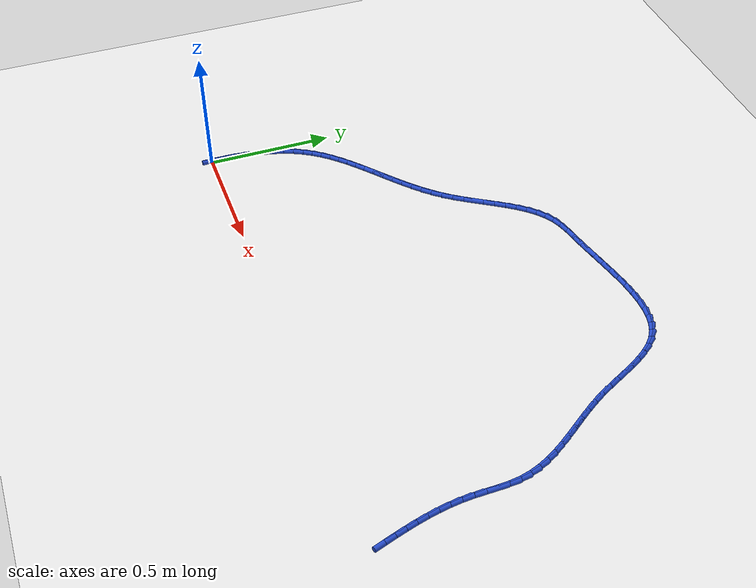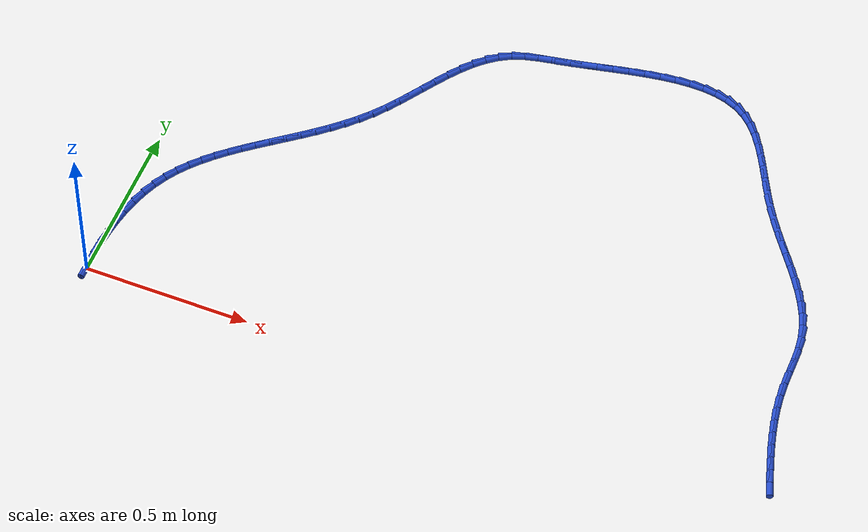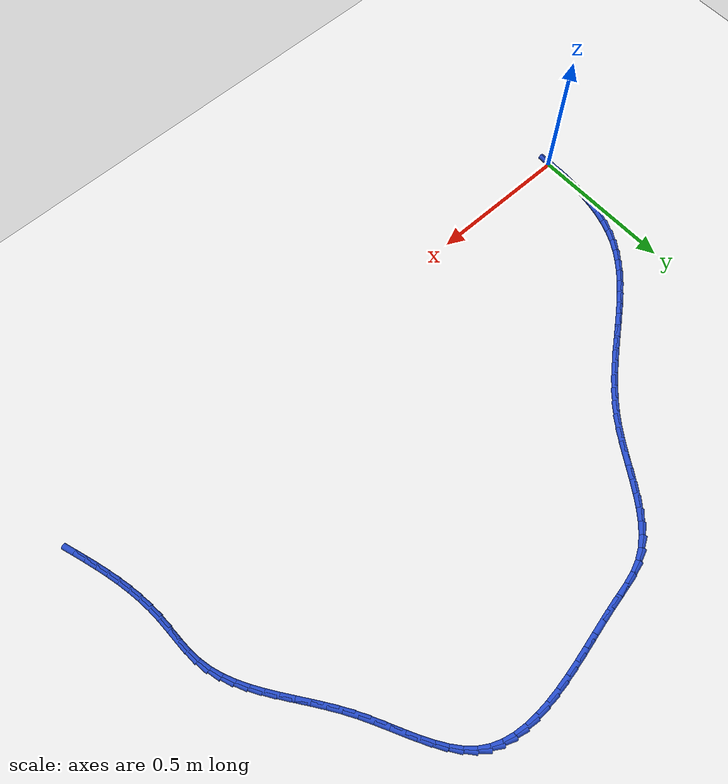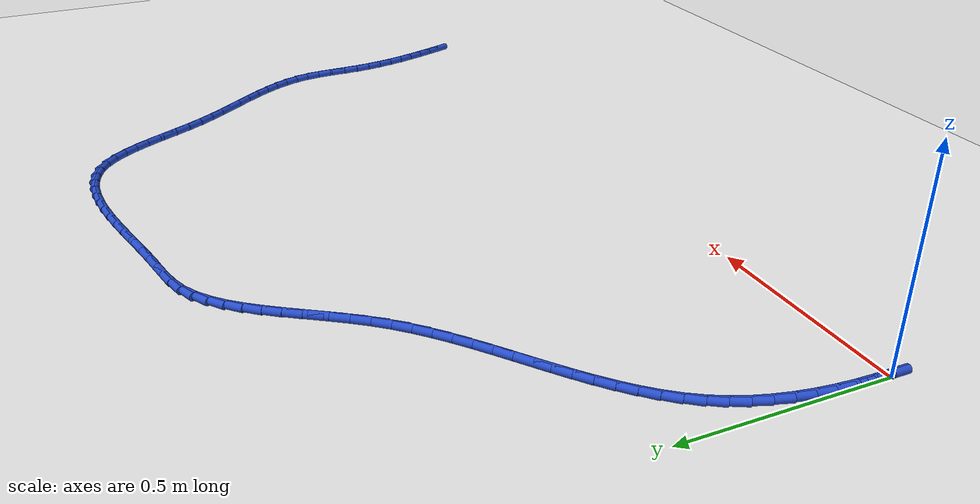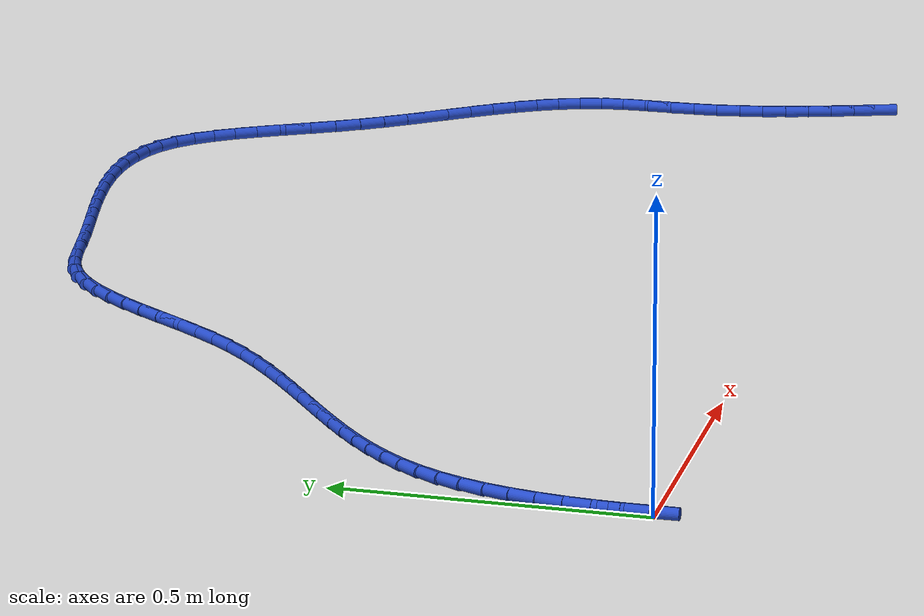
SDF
<sdf version="1.6">
 <world name="default">
  <model name="ground_plane">
   <static>1</static>
   <link name="link">
    <collision name="collision">
     <geometry><plane><normal>0 0 1</normal><size>100 100</size></plane></geometry>
     <surface><friction><ode><mu>100</mu><mu2>50</mu2></ode></friction></surface>
    </collision>
    <visual name="visual">
     <cast_shadows>0</cast_shadows>
     <geometry><plane><normal>0 0 1</normal><size>100 100</size></plane></geometry>
     <material>
      <script><uri>file://media/materials/scripts/gazebo.material</uri><name>Gazebo/WhiteGlow</name></script>
     </material>
    </visual>
   </link>
  </model>
  <model name="line">
   <link name="link_0">
    <pose>1.214306433183765e-17 -6.938893903907228e-17 0.01 0 1.57 -1.5685302213631074</pose>
    <collision name="collision">
     <geometry><cylinder><radius>0.01</radius><length>0.08</length></cylinder></geometry>
    </collision>
    <visual name="visual">
     <material>
      <script><name>Gazebo/Blue</name><uri>file://media/materials/scripts/gazebo.material</uri></script>
     </material>
     <geometry><cylinder><radius>0.01</radius><length>0.08</length></cylinder></geometry>
    </visual>
   </link>
   <link name="link_1">
    <pose>-9.99671896477195e-05 0.044114019200969606 0.01 0 1.57 1.5363660218653532</pose>
    <collision name="collision">
     <geometry><cylinder><radius>0.01</radius><length>0.08</length></cylinder></geometry>
    </collision>
    <visual name="visual">
     <material>
      <script><name>Gazebo/Blue</name><uri>file://media/materials/scripts/gazebo.material</uri></script>
     </material>
     <geometry><cylinder><radius>0.01</radius><length>0.08</length></cylinder></geometry>
    </visual>
   </link>
   <link name="link_2">
    <pose>0.0014224744497002872 0.08831461527995998 0.01 0 1.57 1.4947771484701307</pose>
    <collision name="collision">
     <geometry><cylinder><radius>0.01</radius><length>0.08</length></cylinder></geometry>
    </collision>
    <visual name="visual">
     <material>
      <script><name>Gazebo/Blue</name><uri>file://media/materials/scripts/gazebo.material</uri></script>
     </material>
     <geometry><cylinder><radius>0.01</radius><length>0.08</length></cylinder></geometry>
    </visual>
   </link>
   <link name="link_3">
    <pose>0.004772150245150177 0.13229326493256127 0.01 0 1.57 1.447558426292112</pose>
    <collision name="collision">
     <geometry><cylinder><radius>0.01</radius><length>0.08</length></cylinder></geometry>
    </collision>
    <visual name="visual">
     <material>
      <script><name>Gazebo/Blue</name><uri>file://media/materials/scripts/gazebo.material</uri></script>
     </material>
     <geometry><cylinder><radius>0.01</radius><length>0.08</length></cylinder></geometry>
    </visual>
   </link>
   <link name="link_4">
    <pose>0.010153885523808115 0.17574144485436366 0.01 0 1.57 1.393863754703987</pose>
    <collision name="collision">
     <geometry><cylinder><radius>0.01</radius><length>0.08</length></cylinder></geometry>
    </collision>
    <visual name="visual">
     <material>
      <script><name>Gazebo/Blue</name><uri>file://media/materials/scripts/gazebo.material</uri></script>
     </material>
     <geometry><cylinder><radius>0.01</radius><length>0.08</length></cylinder></geometry>
    </visual>
   </link>
   <link name="link_5">
    <pose>0.01777250561278025 0.2183506317409575 0.01 0 1.57 1.3327550224882376</pose>
    <collision name="collision">
     <geometry><cylinder><radius>0.01</radius><length>0.08</length></cylinder></geometry>
    </collision>
    <visual name="visual">
     <material>
      <script><name>Gazebo/Blue</name><uri>file://media/materials/scripts/gazebo.material</uri></script>
     </material>
     <geometry><cylinder><radius>0.01</radius><length>0.08</length></cylinder></geometry>
    </visual>
   </link>
   <link name="link_6">
    <pose>0.02783283583917274 0.25981230228793284 0.01 0 1.57 1.26324750327836</pose>
    <collision name="collision">
     <geometry><cylinder><radius>0.01</radius><length>0.08</length></cylinder></geometry>
    </collision>
    <visual name="visual">
     <material>
      <script><name>Gazebo/Blue</name><uri>file://media/materials/scripts/gazebo.material</uri></script>
     </material>
     <geometry><cylinder><radius>0.01</radius><length>0.08</length></cylinder></geometry>
    </visual>
   </link>
   <link name="link_7">
    <pose>0.04053970153009172 0.29981793319087996 0.01 0 1.57 1.1844021716031738</pose>
    <collision name="collision">
     <geometry><cylinder><radius>0.01</radius><length>0.08</length></cylinder></geometry>
    </collision>
    <visual name="visual">
     <material>
      <script><name>Gazebo/Blue</name><uri>file://media/materials/scripts/gazebo.material</uri></script>
     </material>
     <geometry><cylinder><radius>0.01</radius><length>0.08</length></cylinder></geometry>
    </visual>
   </link>
   <link name="link_8">
    <pose>0.05609792801264335 0.33805900114538906 0.01 0 1.57 1.095634461560095</pose>
    <collision name="collision">
     <geometry><cylinder><radius>0.01</radius><length>0.08</length></cylinder></geometry>
    </collision>
    <visual name="visual">
     <material>
      <script><name>Gazebo/Blue</name><uri>file://media/materials/scripts/gazebo.material</uri></script>
     </material>
     <geometry><cylinder><radius>0.01</radius><length>0.08</length></cylinder></geometry>
    </visual>
   </link>
   <link name="link_9">
    <pose>0.07470799001230478 0.37423179226611597 0.01 0 1.57 1.004116747851904</pose>
    <collision name="collision">
     <geometry><cylinder><radius>0.01</radius><length>0.08</length></cylinder></geometry>
    </collision>
    <visual name="visual">
     <material>
      <script><name>Gazebo/Blue</name><uri>file://media/materials/scripts/gazebo.material</uri></script>
     </material>
     <geometry><cylinder><radius>0.01</radius><length>0.08</length></cylinder></geometry>
    </visual>
   </link>
   <link name="link_10">
    <pose>0.09636187944067819 0.408263062222364 0.01 0 1.57 0.9216298065416448</pose>
    <collision name="collision">
     <geometry><cylinder><radius>0.01</radius><length>0.08</length></cylinder></geometry>
    </collision>
    <visual name="visual">
     <material>
      <script><name>Gazebo/Blue</name><uri>file://media/materials/scripts/gazebo.material</uri></script>
     </material>
     <geometry><cylinder><radius>0.01</radius><length>0.08</length></cylinder></geometry>
    </visual>
   </link>
   <link name="link_11">
    <pose>0.12075550225557333 0.4404068780653176 0.01 0 1.57 0.850331340027047</pose>
    <collision name="collision">
     <geometry><cylinder><radius>0.01</radius><length>0.08</length></cylinder></geometry>
    </collision>
    <visual name="visual">
     <material>
      <script><name>Gazebo/Blue</name><uri>file://media/materials/scripts/gazebo.material</uri></script>
     </material>
     <geometry><cylinder><radius>0.01</radius><length>0.08</length></cylinder></geometry>
    </visual>
   </link>
   <link name="link_12">
    <pose>0.14756221451187218 0.47094223487734294 0.01 0 1.57 0.790780903514077</pose>
    <collision name="collision">
     <geometry><cylinder><radius>0.01</radius><length>0.08</length></cylinder></geometry>
    </collision>
    <visual name="visual">
     <material>
      <script><name>Gazebo/Blue</name><uri>file://media/materials/scripts/gazebo.material</uri></script>
     </material>
     <geometry><cylinder><radius>0.01</radius><length>0.08</length></cylinder></geometry>
    </visual>
   </link>
   <link name="link_13">
    <pose>0.17645537226445665 0.5001481277408066 0.01 0 1.57 0.7429546331523817</pose>
    <collision name="collision">
     <geometry><cylinder><radius>0.01</radius><length>0.08</length></cylinder></geometry>
    </collision>
    <visual name="visual">
     <material>
      <script><name>Gazebo/Blue</name><uri>file://media/materials/scripts/gazebo.material</uri></script>
     </material>
     <geometry><cylinder><radius>0.01</radius><length>0.08</length></cylinder></geometry>
    </visual>
   </link>
   <link name="link_14">
    <pose>0.20710833156820843 0.5283035517380745 0.01 0 1.57 0.7064945292356812</pose>
    <collision name="collision">
     <geometry><cylinder><radius>0.01</radius><length>0.08</length></cylinder></geometry>
    </collision>
    <visual name="visual">
     <material>
      <script><name>Gazebo/Blue</name><uri>file://media/materials/scripts/gazebo.material</uri></script>
     </material>
     <geometry><cylinder><radius>0.01</radius><length>0.08</length></cylinder></geometry>
    </visual>
   </link>
   <link name="link_15">
    <pose>0.2391944484780096 0.5556875019515133 0.01 0 1.57 0.680907797121899</pose>
    <collision name="collision">
     <geometry><cylinder><radius>0.01</radius><length>0.08</length></cylinder></geometry>
    </collision>
    <visual name="visual">
     <material>
      <script><name>Gazebo/Blue</name><uri>file://media/materials/scripts/gazebo.material</uri></script>
     </material>
     <geometry><cylinder><radius>0.01</radius><length>0.08</length></cylinder></geometry>
    </visual>
   </link>
   <link name="link_16">
    <pose>0.27238707904874204 0.582578973463489 0.01 0 1.57 0.6657018080436211</pose>
    <collision name="collision">
     <geometry><cylinder><radius>0.01</radius><length>0.08</length></cylinder></geometry>
    </collision>
    <visual name="visual">
     <material>
      <script><name>Gazebo/Blue</name><uri>file://media/materials/scripts/gazebo.material</uri></script>
     </material>
     <geometry><cylinder><radius>0.01</radius><length>0.08</length></cylinder></geometry>
    </visual>
   </link>
   <link name="link_17">
    <pose>0.3063595793352878 0.6092569613563683 0.01 0 1.57 0.6604625506550345</pose>
    <collision name="collision">
     <geometry><cylinder><radius>0.01</radius><length>0.08</length></cylinder></geometry>
    </collision>
    <visual name="visual">
     <material>
      <script><name>Gazebo/Blue</name><uri>file://media/materials/scripts/gazebo.material</uri></script>
     </material>
     <geometry><cylinder><radius>0.01</radius><length>0.08</length></cylinder></geometry>
    </visual>
   </link>
   <link name="link_18">
    <pose>0.34078530539252844 0.6360004607125169 0.01 0 1.57 0.6648904304787626</pose>
    <collision name="collision">
     <geometry><cylinder><radius>0.01</radius><length>0.08</length></cylinder></geometry>
    </collision>
    <visual name="visual">
     <material>
      <script><name>Gazebo/Blue</name><uri>file://media/materials/scripts/gazebo.material</uri></script>
     </material>
     <geometry><cylinder><radius>0.01</radius><length>0.08</length></cylinder></geometry>
    </visual>
   </link>
   <link name="link_19">
    <pose>0.3753376132753459 0.6630884666143015 0.01 0 1.57 0.6788050567709941</pose>
    <collision name="collision">
     <geometry><cylinder><radius>0.01</radius><length>0.08</length></cylinder></geometry>
    </collision>
    <visual name="visual">
     <material>
      <script><name>Gazebo/Blue</name><uri>file://media/materials/scripts/gazebo.material</uri></script>
     </material>
     <geometry><cylinder><radius>0.01</radius><length>0.08</length></cylinder></geometry>
    </visual>
   </link>
   <link name="link_20">
    <pose>0.40968985903862243 0.6907999741440884 0.01 0 1.57 0.7021258733396276</pose>
    <collision name="collision">
     <geometry><cylinder><radius>0.01</radius><length>0.08</length></cylinder></geometry>
    </collision>
    <visual name="visual">
     <material>
      <script><name>Gazebo/Blue</name><uri>file://media/materials/scripts/gazebo.material</uri></script>
     </material>
     <geometry><cylinder><radius>0.01</radius><length>0.08</length></cylinder></geometry>
    </visual>
   </link>
   <link name="link_21">
    <pose>0.4435153987372397 0.7194139783842439 0.01 0 1.57 0.7348309724507885</pose>
    <collision name="collision">
     <geometry><cylinder><radius>0.01</radius><length>0.08</length></cylinder></geometry>
    </collision>
    <visual name="visual">
     <material>
      <script><name>Gazebo/Blue</name><uri>file://media/materials/scripts/gazebo.material</uri></script>
     </material>
     <geometry><cylinder><radius>0.01</radius><length>0.08</length></cylinder></geometry>
    </visual>
   </link>
   <link name="link_22">
    <pose>0.4764875884260793 0.7492094744171338 0.01 0 1.57 0.7768935577189008</pose>
    <collision name="collision">
     <geometry><cylinder><radius>0.01</radius><length>0.08</length></cylinder></geometry>
    </collision>
    <visual name="visual">
     <material>
      <script><name>Gazebo/Blue</name><uri>file://media/materials/scripts/gazebo.material</uri></script>
     </material>
     <geometry><cylinder><radius>0.01</radius><length>0.08</length></cylinder></geometry>
    </visual>
   </link>
   <link name="link_23">
    <pose>0.5082797841600237 0.7804654573251251 0.01 0 1.57 0.8281953911116935</pose>
    <collision name="collision">
     <geometry><cylinder><radius>0.01</radius><length>0.08</length></cylinder></geometry>
    </collision>
    <visual name="visual">
     <material>
      <script><name>Gazebo/Blue</name><uri>file://media/materials/scripts/gazebo.material</uri></script>
     </material>
     <geometry><cylinder><radius>0.01</radius><length>0.08</length></cylinder></geometry>
    </visual>
   </link>
   <link name="link_24">
    <pose>0.5385653419939547 0.813460922190584 0.01 0 1.57 0.8878043707804502</pose>
    <collision name="collision">
     <geometry><cylinder><radius>0.01</radius><length>0.08</length></cylinder></geometry>
    </collision>
    <visual name="visual">
     <material>
      <script><name>Gazebo/Blue</name><uri>file://media/materials/scripts/gazebo.material</uri></script>
     </material>
     <geometry><cylinder><radius>0.01</radius><length>0.08</length></cylinder></geometry>
    </visual>
   </link>
   <link name="link_25">
    <pose>0.5670356861177517 0.8484530291755793 0.01 0 1.57 0.9416291684233294</pose>
    <collision name="collision">
     <geometry><cylinder><radius>0.01</radius><length>0.08</length></cylinder></geometry>
    </collision>
    <visual name="visual">
     <material>
      <script><name>Gazebo/Blue</name><uri>file://media/materials/scripts/gazebo.material</uri></script>
     </material>
     <geometry><cylinder><radius>0.01</radius><length>0.08</length></cylinder></geometry>
    </visual>
   </link>
   <link name="link_26">
    <pose>0.5937879195670831 0.8852086850062272 0.01 0 1.57 0.9767766220533224</pose>
    <collision name="collision">
     <geometry><cylinder><radius>0.01</radius><length>0.08</length></cylinder></geometry>
    </collision>
    <visual name="visual">
     <material>
      <script><name>Gazebo/Blue</name><uri>file://media/materials/scripts/gazebo.material</uri></script>
     </material>
     <geometry><cylinder><radius>0.01</radius><length>0.08</length></cylinder></geometry>
    </visual>
   </link>
   <link name="link_27">
    <pose>0.6193194056220332 0.923011091226237 0.01 0 1.57 0.9934552692911446</pose>
    <collision name="collision">
     <geometry><cylinder><radius>0.01</radius><length>0.08</length></cylinder></geometry>
    </collision>
    <visual name="visual">
     <material>
      <script><name>Gazebo/Blue</name><uri>file://media/materials/scripts/gazebo.material</uri></script>
     </material>
     <geometry><cylinder><radius>0.01</radius><length>0.08</length></cylinder></geometry>
    </visual>
   </link>
   <link name="link_28">
    <pose>0.6441444919159811 0.9611229241839668 0.01 0 1.57 0.9918421998247919</pose>
    <collision name="collision">
     <geometry><cylinder><radius>0.01</radius><length>0.08</length></cylinder></geometry>
    </collision>
    <visual name="visual">
     <material>
      <script><name>Gazebo/Blue</name><uri>file://media/materials/scripts/gazebo.material</uri></script>
     </material>
     <geometry><cylinder><radius>0.01</radius><length>0.08</length></cylinder></geometry>
    </visual>
   </link>
   <link name="link_29">
    <pose>0.668777526082305 0.9988068602277739 0.01 0 1.57 0.9713275255370154</pose>
    <collision name="collision">
     <geometry><cylinder><radius>0.01</radius><length>0.08</length></cylinder></geometry>
    </collision>
    <visual name="visual">
     <material>
      <script><name>Gazebo/Blue</name><uri>file://media/materials/scripts/gazebo.material</uri></script>
     </material>
     <geometry><cylinder><radius>0.01</radius><length>0.08</length></cylinder></geometry>
    </visual>
   </link>
   <link name="link_30">
    <pose>0.6937328557543836 1.035325575706015 0.01 0 1.57 0.9304485648295</pose>
    <collision name="collision">
     <geometry><cylinder><radius>0.01</radius><length>0.08</length></cylinder></geometry>
    </collision>
    <visual name="visual">
     <material>
      <script><name>Gazebo/Blue</name><uri>file://media/materials/scripts/gazebo.material</uri></script>
     </material>
     <geometry><cylinder><radius>0.01</radius><length>0.08</length></cylinder></geometry>
    </visual>
   </link>
   <link name="link_31">
    <pose>0.7195248285655957 1.0699417469670487 0.01 0 1.57 0.866972485142294</pose>
    <collision name="collision">
     <geometry><cylinder><radius>0.01</radius><length>0.08</length></cylinder></geometry>
    </collision>
    <visual name="visual">
     <material>
      <script><name>Gazebo/Blue</name><uri>file://media/materials/scripts/gazebo.material</uri></script>
     </material>
     <geometry><cylinder><radius>0.01</radius><length>0.08</length></cylinder></geometry>
    </visual>
   </link>
   <link name="link_32">
    <pose>0.7466677921493202 1.1019180503592323 0.01 0 1.57 0.7782952020079401</pose>
    <collision name="collision">
     <geometry><cylinder><radius>0.01</radius><length>0.08</length></cylinder></geometry>
    </collision>
    <visual name="visual">
     <material>
      <script><name>Gazebo/Blue</name><uri>file://media/materials/scripts/gazebo.material</uri></script>
     </material>
     <geometry><cylinder><radius>0.01</radius><length>0.08</length></cylinder></geometry>
    </visual>
   </link>
   <link name="link_33">
    <pose>0.7756760941389356 1.1305171622309234 0.01 0 1.57 0.662465236075716</pose>
    <collision name="collision">
     <geometry><cylinder><radius>0.01</radius><length>0.08</length></cylinder></geometry>
    </collision>
    <visual name="visual">
     <material>
      <script><name>Gazebo/Blue</name><uri>file://media/materials/scripts/gazebo.material</uri></script>
     </material>
     <geometry><cylinder><radius>0.01</radius><length>0.08</length></cylinder></geometry>
    </visual>
   </link>
   <link name="link_34">
    <pose>0.8070640821678203 1.1550017589304789 0.01 0 1.57 0.5200918389951178</pose>
    <collision name="collision">
     <geometry><cylinder><radius>0.01</radius><length>0.08</length></cylinder></geometry>
    </collision>
    <visual name="visual">
     <material>
      <script><name>Gazebo/Blue</name><uri>file://media/materials/scripts/gazebo.material</uri></script>
     </material>
     <geometry><cylinder><radius>0.01</radius><length>0.08</length></cylinder></geometry>
    </visual>
   </link>
   <link name="link_35">
    <pose>0.8413461038693528 1.1746345168062564 0.01 0 1.57 0.36163210237958193</pose>
    <collision name="collision">
     <geometry><cylinder><radius>0.01</radius><length>0.08</length></cylinder></geometry>
    </collision>
    <visual name="visual">
     <material>
      <script><name>Gazebo/Blue</name><uri>file://media/materials/scripts/gazebo.material</uri></script>
     </material>
     <geometry><cylinder><radius>0.01</radius><length>0.08</length></cylinder></geometry>
    </visual>
   </link>
   <link name="link_36">
    <pose>0.8789596154095368 1.1888624796099996 0.01 0 1.57 0.242095698993893</pose>
    <collision name="collision">
     <geometry><cylinder><radius>0.01</radius><length>0.08</length></cylinder></geometry>
    </collision>
    <visual name="visual">
     <material>
      <script><name>Gazebo/Blue</name><uri>file://media/materials/scripts/gazebo.material</uri></script>
     </material>
     <geometry><cylinder><radius>0.01</radius><length>0.08</length></cylinder></geometry>
    </visual>
   </link>
   <link name="link_37">
    <pose>0.9196052284112275 1.1988994686014702 0.01 0 1.57 0.18504675685482516</pose>
    <collision name="collision">
     <geometry><cylinder><radius>0.01</radius><length>0.08</length></cylinder></geometry>
    </collision>
    <visual name="visual">
     <material>
      <script><name>Gazebo/Blue</name><uri>file://media/materials/scripts/gazebo.material</uri></script>
     </material>
     <geometry><cylinder><radius>0.01</radius><length>0.08</length></cylinder></geometry>
    </visual>
   </link>
   <link name="link_38">
    <pose>0.9625734591464802 1.2069426159011527 0.01 0 1.57 0.18227392945360685</pose>
    <collision name="collision">
     <geometry><cylinder><radius>0.01</radius><length>0.08</length></cylinder></geometry>
    </collision>
    <visual name="visual">
     <material>
      <script><name>Gazebo/Blue</name><uri>file://media/materials/scripts/gazebo.material</uri></script>
     </material>
     <geometry><cylinder><radius>0.01</radius><length>0.08</length></cylinder></geometry>
    </visual>
   </link>
   <link name="link_39">
    <pose>1.00715563410935 1.2151599904175578 0.01 0 1.57 0.20176720868793951</pose>
    <collision name="collision">
     <geometry><cylinder><radius>0.01</radius><length>0.08</length></cylinder></geometry>
    </collision>
    <visual name="visual">
     <material>
      <script><name>Gazebo/Blue</name><uri>file://media/materials/scripts/gazebo.material</uri></script>
     </material>
     <geometry><cylinder><radius>0.01</radius><length>0.08</length></cylinder></geometry>
    </visual>
   </link>
   <link name="link_40">
    <pose>1.052804278565127 1.2244974444895582 0.01 0 1.57 0.21204068017003128</pose>
    <collision name="collision">
     <geometry><cylinder><radius>0.01</radius><length>0.08</length></cylinder></geometry>
    </collision>
    <visual name="visual">
     <material>
      <script><name>Gazebo/Blue</name><uri>file://media/materials/scripts/gazebo.material</uri></script>
     </material>
     <geometry><cylinder><radius>0.01</radius><length>0.08</length></cylinder></geometry>
    </visual>
   </link>
   <link name="link_41">
    <pose>1.0991597471132428 1.234476699721727 0.01 0 1.57 0.21216668842118025</pose>
    <collision name="collision">
     <geometry><cylinder><radius>0.01</radius><length>0.08</length></cylinder></geometry>
    </collision>
    <visual name="visual">
     <material>
      <script><name>Gazebo/Blue</name><uri>file://media/materials/scripts/gazebo.material</uri></script>
     </material>
     <geometry><cylinder><radius>0.01</radius><length>0.08</length></cylinder></geometry>
    </visual>
   </link>
   <link name="link_42">
    <pose>1.1458729908159389 1.2445391348454946 0.01 0 1.57 0.2023832428279299</pose>
    <collision name="collision">
     <geometry><cylinder><radius>0.01</radius><length>0.08</length></cylinder></geometry>
    </collision>
    <visual name="visual">
     <material>
      <script><name>Gazebo/Blue</name><uri>file://media/materials/scripts/gazebo.material</uri></script>
     </material>
     <geometry><cylinder><radius>0.01</radius><length>0.08</length></cylinder></geometry>
    </visual>
   </link>
   <link name="link_43">
    <pose>1.1925949607354576 1.2541261285922911 0.01 0 1.57 0.18235479887713393</pose>
    <collision name="collision">
     <geometry><cylinder><radius>0.01</radius><length>0.08</length></cylinder></geometry>
    </collision>
    <visual name="visual">
     <material>
      <script><name>Gazebo/Blue</name><uri>file://media/materials/scripts/gazebo.material</uri></script>
     </material>
     <geometry><cylinder><radius>0.01</radius><length>0.08</length></cylinder></geometry>
    </visual>
   </link>
   <link name="link_44">
    <pose>1.2389766079340412 1.2626790596935467 0.01 0 1.57 0.15116667134634432</pose>
    <collision name="collision">
     <geometry><cylinder><radius>0.01</radius><length>0.08</length></cylinder></geometry>
    </collision>
    <visual name="visual">
     <material>
      <script><name>Gazebo/Blue</name><uri>file://media/materials/scripts/gazebo.material</uri></script>
     </material>
     <geometry><cylinder><radius>0.01</radius><length>0.08</length></cylinder></geometry>
    </visual>
   </link>
   <link name="link_45">
    <pose>1.2846688834739328 1.269639306880691 0.01 0 1.57 0.10728030164639592</pose>
    <collision name="collision">
     <geometry><cylinder><radius>0.01</radius><length>0.08</length></cylinder></geometry>
    </collision>
    <visual name="visual">
     <material>
      <script><name>Gazebo/Blue</name><uri>file://media/materials/scripts/gazebo.material</uri></script>
     </material>
     <geometry><cylinder><radius>0.01</radius><length>0.08</length></cylinder></geometry>
    </visual>
   </link>
   <link name="link_46">
    <pose>1.329322738417373 1.2744482488851545 0.01 0 1.57 0.048475765123383675</pose>
    <collision name="collision">
     <geometry><cylinder><radius>0.01</radius><length>0.08</length></cylinder></geometry>
    </collision>
    <visual name="visual">
     <material>
      <script><name>Gazebo/Blue</name><uri>file://media/materials/scripts/gazebo.material</uri></script>
     </material>
     <geometry><cylinder><radius>0.01</radius><length>0.08</length></cylinder></geometry>
    </visual>
   </link>
   <link name="link_47">
    <pose>1.3725891238266061 1.2765472644383677 0.01 0 1.57 -0.028153789841341887</pose>
    <collision name="collision">
     <geometry><cylinder><radius>0.01</radius><length>0.08</length></cylinder></geometry>
    </collision>
    <visual name="visual">
     <material>
      <script><name>Gazebo/Blue</name><uri>file://media/materials/scripts/gazebo.material</uri></script>
     </material>
     <geometry><cylinder><radius>0.01</radius><length>0.08</length></cylinder></geometry>
    </visual>
   </link>
   <link name="link_48">
    <pose>1.4141189907638725 1.2753777322717603 0.01 0 1.57 -0.12600624215034267</pose>
    <collision name="collision">
     <geometry><cylinder><radius>0.01</radius><length>0.08</length></cylinder></geometry>
    </collision>
    <visual name="visual">
     <material>
      <script><name>Gazebo/Blue</name><uri>file://media/materials/scripts/gazebo.material</uri></script>
     </material>
     <geometry><cylinder><radius>0.01</radius><length>0.08</length></cylinder></geometry>
    </visual>
   </link>
   <link name="link_49">
    <pose>1.4535632902914153 1.2703810311167623 0.01 0 1.57 -0.2482836849005246</pose>
    <collision name="collision">
     <geometry><cylinder><radius>0.01</radius><length>0.08</length></cylinder></geometry>
    </collision>
    <visual name="visual">
     <material>
      <script><name>Gazebo/Blue</name><uri>file://media/materials/scripts/gazebo.material</uri></script>
     </material>
     <geometry><cylinder><radius>0.01</radius><length>0.08</length></cylinder></geometry>
    </visual>
   </link>
   <link name="link_50">
    <pose>1.4905729734714768 1.2609985397048038 0.01 0 1.57 -0.39643463672519014</pose>
    <collision name="collision">
     <geometry><cylinder><radius>0.01</radius><length>0.08</length></cylinder></geometry>
    </collision>
    <visual name="visual">
     <material>
      <script><name>Gazebo/Blue</name><uri>file://media/materials/scripts/gazebo.material</uri></script>
     </material>
     <geometry><cylinder><radius>0.01</radius><length>0.08</length></cylinder></geometry>
    </visual>
   </link>
   <link name="link_51">
    <pose>1.5247989913662994 1.2466716367673156 0.01 0 1.57 -0.5675971210926255</pose>
    <collision name="collision">
     <geometry><cylinder><radius>0.01</radius><length>0.08</length></cylinder></geometry>
    </collision>
    <visual name="visual">
     <material>
      <script><name>Gazebo/Blue</name><uri>file://media/materials/scripts/gazebo.material</uri></script>
     </material>
     <geometry><cylinder><radius>0.01</radius><length>0.08</length></cylinder></geometry>
    </visual>
   </link>
   <link name="link_52">
    <pose>1.555894793586734 1.2268454607813906 0.01 0 1.57 -0.7385750831857838</pose>
    <collision name="collision">
     <geometry><cylinder><radius>0.01</radius><length>0.08</length></cylinder></geometry>
    </collision>
    <visual name="visual">
     <material>
      <script><name>Gazebo/Blue</name><uri>file://media/materials/scripts/gazebo.material</uri></script>
     </material>
     <geometry><cylinder><radius>0.01</radius><length>0.08</length></cylinder></geometry>
    </visual>
   </link>
   <link name="link_53">
    <pose>1.5838176200997682 1.20142228540653 0.01 0 1.57 -0.8739698385360467</pose>
    <collision name="collision">
     <geometry><cylinder><radius>0.01</radius><length>0.08</length></cylinder></geometry>
    </collision>
    <visual name="visual">
     <material>
      <script><name>Gazebo/Blue</name><uri>file://media/materials/scripts/gazebo.material</uri></script>
     </material>
     <geometry><cylinder><radius>0.01</radius><length>0.08</length></cylinder></geometry>
    </visual>
   </link>
   <link name="link_54">
    <pose>1.6091155070602459 1.1711933977868496 0.01 0 1.57 -0.9721572210861517</pose>
    <collision name="collision">
     <geometry><cylinder><radius>0.01</radius><length>0.08</length></cylinder></geometry>
    </collision>
    <visual name="visual">
     <material>
      <script><name>Gazebo/Blue</name><uri>file://media/materials/scripts/gazebo.material</uri></script>
     </material>
     <geometry><cylinder><radius>0.01</radius><length>0.08</length></cylinder></geometry>
    </visual>
   </link>
   <link name="link_55">
    <pose>1.632404479735785 1.1370523931708585 0.01 0 1.57 -1.038322078686913</pose>
    <collision name="collision">
     <geometry><cylinder><radius>0.01</radius><length>0.08</length></cylinder></geometry>
    </collision>
    <visual name="visual">
     <material>
      <script><name>Gazebo/Blue</name><uri>file://media/materials/scripts/gazebo.material</uri></script>
     </material>
     <geometry><cylinder><radius>0.01</radius><length>0.08</length></cylinder></geometry>
    </visual>
   </link>
   <link name="link_56">
    <pose>1.6543005633940018 1.0998928668070662 0.01 0 1.57 -1.0775251012836669</pose>
    <collision name="collision">
     <geometry><cylinder><radius>0.01</radius><length>0.08</length></cylinder></geometry>
    </collision>
    <visual name="visual">
     <material>
      <script><name>Gazebo/Blue</name><uri>file://media/materials/scripts/gazebo.material</uri></script>
     </material>
     <geometry><cylinder><radius>0.01</radius><length>0.08</length></cylinder></geometry>
    </visual>
   </link>
   <link name="link_57">
    <pose>1.6754197833025146 1.0606084139439822 0.01 0 1.57 -1.093413142505255</pose>
    <collision name="collision">
     <geometry><cylinder><radius>0.01</radius><length>0.08</length></cylinder></geometry>
    </collision>
    <visual name="visual">
     <material>
      <script><name>Gazebo/Blue</name><uri>file://media/materials/scripts/gazebo.material</uri></script>
     </material>
     <geometry><cylinder><radius>0.01</radius><length>0.08</length></cylinder></geometry>
    </visual>
   </link>
   <link name="link_58">
    <pose>1.6963781647289409 1.0200926298301154 0.01 0 1.57 -1.0880121415725734</pose>
    <collision name="collision">
     <geometry><cylinder><radius>0.01</radius><length>0.08</length></cylinder></geometry>
    </collision>
    <visual name="visual">
     <material>
      <script><name>Gazebo/Blue</name><uri>file://media/materials/scripts/gazebo.material</uri></script>
     </material>
     <geometry><cylinder><radius>0.01</radius><length>0.08</length></cylinder></geometry>
    </visual>
   </link>
   <link name="link_59">
    <pose>1.717791732940897 0.979239109713976 0.01 0 1.57 -1.061856711473339</pose>
    <collision name="collision">
     <geometry><cylinder><radius>0.01</radius><length>0.08</length></cylinder></geometry>
    </collision>
    <visual name="visual">
     <material>
      <script><name>Gazebo/Blue</name><uri>file://media/materials/scripts/gazebo.material</uri></script>
     </material>
     <geometry><cylinder><radius>0.01</radius><length>0.08</length></cylinder></geometry>
    </visual>
   </link>
   <link name="link_60">
    <pose>1.7402765132060012 0.938941448844073 0.01 0 1.57 -1.0175725071554629</pose>
    <collision name="collision">
     <geometry><cylinder><radius>0.01</radius><length>0.08</length></cylinder></geometry>
    </collision>
    <visual name="visual">
     <material>
      <script><name>Gazebo/Blue</name><uri>file://media/materials/scripts/gazebo.material</uri></script>
     </material>
     <geometry><cylinder><radius>0.01</radius><length>0.08</length></cylinder></geometry>
    </visual>
   </link>
   <link name="link_61">
    <pose>1.7643358898525563 0.8999820287479273 0.01 0 1.57 -0.9775227770807143</pose>
    <collision name="collision">
     <geometry><cylinder><radius>0.01</radius><length>0.08</length></cylinder></geometry>
    </collision>
    <visual name="visual">
     <material>
      <script><name>Gazebo/Blue</name><uri>file://media/materials/scripts/gazebo.material</uri></script>
     </material>
     <geometry><cylinder><radius>0.01</radius><length>0.08</length></cylinder></geometry>
    </visual>
   </link>
   <link name="link_62">
    <pose>1.7896948102922994 0.8623746572304636 0.01 0 1.57 -0.9517084450020616</pose>
    <collision name="collision">
     <geometry><cylinder><radius>0.01</radius><length>0.08</length></cylinder></geometry>
    </collision>
    <visual name="visual">
     <material>
      <script><name>Gazebo/Blue</name><uri>file://media/materials/scripts/gazebo.material</uri></script>
     </material>
     <geometry><cylinder><radius>0.01</radius><length>0.08</length></cylinder></geometry>
    </visual>
   </link>
   <link name="link_63">
    <pose>1.8157494060300217 0.8258084924554162 0.01 0 1.57 -0.940505118203751</pose>
    <collision name="collision">
     <geometry><cylinder><radius>0.01</radius><length>0.08</length></cylinder></geometry>
    </collision>
    <visual name="visual">
     <material>
      <script><name>Gazebo/Blue</name><uri>file://media/materials/scripts/gazebo.material</uri></script>
     </material>
     <geometry><cylinder><radius>0.01</radius><length>0.08</length></cylinder></geometry>
    </visual>
   </link>
   <link name="link_64">
    <pose>1.8418946423705556 0.7899715411629128 0.01 0 1.57 -0.944385558358054</pose>
    <collision name="collision">
     <geometry><cylinder><radius>0.01</radius><length>0.08</length></cylinder></geometry>
    </collision>
    <visual name="visual">
     <material>
      <script><name>Gazebo/Blue</name><uri>file://media/materials/scripts/gazebo.material</uri></script>
     </material>
     <geometry><cylinder><radius>0.01</radius><length>0.08</length></cylinder></geometry>
    </visual>
   </link>
   <link name="link_65">
    <pose>1.8675254846187321 0.7545518100930788 0.01 0 1.57 -0.964048414507617</pose>
    <collision name="collision">
     <geometry><cylinder><radius>0.01</radius><length>0.08</length></cylinder></geometry>
    </collision>
    <visual name="visual">
     <material>
      <script><name>Gazebo/Blue</name><uri>file://media/materials/scripts/gazebo.material</uri></script>
     </material>
     <geometry><cylinder><radius>0.01</radius><length>0.08</length></cylinder></geometry>
    </visual>
   </link>
   <link name="link_66">
    <pose>1.8920368980793856 0.7192373059860411 0.01 0 1.57 -1.000418631432097</pose>
    <collision name="collision">
     <geometry><cylinder><radius>0.01</radius><length>0.08</length></cylinder></geometry>
    </collision>
    <visual name="visual">
     <material>
      <script><name>Gazebo/Blue</name><uri>file://media/materials/scripts/gazebo.material</uri></script>
     </material>
     <geometry><cylinder><radius>0.01</radius><length>0.08</length></cylinder></geometry>
    </visual>
   </link>
   <link name="link_67">
    <pose>1.914823848057346 0.683716035581926 0.01 0 1.57 -1.0545173957215481</pose>
    <collision name="collision">
     <geometry><cylinder><radius>0.01</radius><length>0.08</length></cylinder></geometry>
    </collision>
    <visual name="visual">
     <material>
      <script><name>Gazebo/Blue</name><uri>file://media/materials/scripts/gazebo.material</uri></script>
     </material>
     <geometry><cylinder><radius>0.01</radius><length>0.08</length></cylinder></geometry>
    </visual>
   </link>
   <link name="link_68">
    <pose>1.935281299857446 0.6476760056208598 0.01 0 1.57 -1.1271422756204768</pose>
    <collision name="collision">
     <geometry><cylinder><radius>0.01</radius><length>0.08</length></cylinder></geometry>
    </collision>
    <visual name="visual">
     <material>
      <script><name>Gazebo/Blue</name><uri>file://media/materials/scripts/gazebo.material</uri></script>
     </material>
     <geometry><cylinder><radius>0.01</radius><length>0.08</length></cylinder></geometry>
    </visual>
   </link>
   <link name="link_69">
    <pose>1.952804218784519 0.6108052228429699 0.01 0 1.57 -1.2183071044696931</pose>
    <collision name="collision">
     <geometry><cylinder><radius>0.01</radius><length>0.08</length></cylinder></geometry>
    </collision>
    <visual name="visual">
     <material>
      <script><name>Gazebo/Blue</name><uri>file://media/materials/scripts/gazebo.material</uri></script>
     </material>
     <geometry><cylinder><radius>0.01</radius><length>0.08</length></cylinder></geometry>
    </visual>
   </link>
   <link name="link_70">
    <pose>1.9667875701433961 0.572791693988382 0.01 0 1.57 -1.3264930590613038</pose>
    <collision name="collision">
     <geometry><cylinder><radius>0.01</radius><length>0.08</length></cylinder></geometry>
    </collision>
    <visual name="visual">
     <material>
      <script><name>Gazebo/Blue</name><uri>file://media/materials/scripts/gazebo.material</uri></script>
     </material>
     <geometry><cylinder><radius>0.01</radius><length>0.08</length></cylinder></geometry>
    </visual>
   </link>
   <link name="link_71">
    <pose>1.9766263192389097 0.5333234257972227 0.01 0 1.57 -1.4419387446465755</pose>
    <collision name="collision">
     <geometry><cylinder><radius>0.01</radius><length>0.08</length></cylinder></geometry>
    </collision>
    <visual name="visual">
     <material>
      <script><name>Gazebo/Blue</name><uri>file://media/materials/scripts/gazebo.material</uri></script>
     </material>
     <geometry><cylinder><radius>0.01</radius><length>0.08</length></cylinder></geometry>
    </visual>
   </link>
   <link name="link_72">
    <pose>1.9819571176885418 0.49218295920234606 0.01 0 1.57 -1.5231686455971853</pose>
    <collision name="collision">
     <geometry><cylinder><radius>0.01</radius><length>0.08</length></cylinder></geometry>
    </collision>
    <visual name="visual">
     <material>
      <script><name>Gazebo/Blue</name><uri>file://media/materials/scripts/gazebo.material</uri></script>
     </material>
     <geometry><cylinder><radius>0.01</radius><length>0.08</length></cylinder></geometry>
    </visual>
   </link>
   <link name="link_73">
    <pose>1.9839789662794418 0.449763938909481 0.01 0 1.57 -1.5584136674722113</pose>
    <collision name="collision">
     <geometry><cylinder><radius>0.01</radius><length>0.08</length></cylinder></geometry>
    </collision>
    <visual name="visual">
     <material>
      <script><name>Gazebo/Blue</name><uri>file://media/materials/scripts/gazebo.material</uri></script>
     </material>
     <geometry><cylinder><radius>0.01</radius><length>0.08</length></cylinder></geometry>
    </visual>
   </link>
   <link name="link_74">
    <pose>1.9845122019544488 0.40670304164071797 0.01 0 1.57 -1.550677419740935</pose>
    <collision name="collision">
     <geometry><cylinder><radius>0.01</radius><length>0.08</length></cylinder></geometry>
    </collision>
    <visual name="visual">
     <material>
      <script><name>Gazebo/Blue</name><uri>file://media/materials/scripts/gazebo.material</uri></script>
     </material>
     <geometry><cylinder><radius>0.01</radius><length>0.08</length></cylinder></geometry>
    </visual>
   </link>
   <link name="link_75">
    <pose>1.9853787491954322 0.36363756507478934 0.01 0 1.57 -1.5032516878962703</pose>
    <collision name="collision">
     <geometry><cylinder><radius>0.01</radius><length>0.08</length></cylinder></geometry>
    </collision>
    <visual name="visual">
     <material>
      <script><name>Gazebo/Blue</name><uri>file://media/materials/scripts/gazebo.material</uri></script>
     </material>
     <geometry><cylinder><radius>0.01</radius><length>0.08</length></cylinder></geometry>
    </visual>
   </link>
   <link name="link_76">
    <pose>1.988252765826624 0.3211524077002992 0.01 0 1.57 -1.445558984806441</pose>
    <collision name="collision">
     <geometry><cylinder><radius>0.01</radius><length>0.08</length></cylinder></geometry>
    </collision>
    <visual name="visual">
     <material>
      <script><name>Gazebo/Blue</name><uri>file://media/materials/scripts/gazebo.material</uri></script>
     </material>
     <geometry><cylinder><radius>0.01</radius><length>0.08</length></cylinder></geometry>
    </visual>
   </link>
   <link name="link_77">
    <pose>1.9935126386917486 0.279372977677972 0.01 0 1.57 -1.3941318600142136</pose>
    <collision name="collision">
     <geometry><cylinder><radius>0.01</radius><length>0.08</length></cylinder></geometry>
    </collision>
    <visual name="visual">
     <material>
      <script><name>Gazebo/Blue</name><uri>file://media/materials/scripts/gazebo.material</uri></script>
     </material>
     <geometry><cylinder><radius>0.01</radius><length>0.08</length></cylinder></geometry>
    </visual>
   </link>
   <link name="link_78">
    <pose>2.0008654561242056 0.23818663556810374 0.01 0 1.57 -1.349764823086508</pose>
    <collision name="collision">
     <geometry><cylinder><radius>0.01</radius><length>0.08</length></cylinder></geometry>
    </collision>
    <visual name="visual">
     <material>
      <script><name>Gazebo/Blue</name><uri>file://media/materials/scripts/gazebo.material</uri></script>
     </material>
     <geometry><cylinder><radius>0.01</radius><length>0.08</length></cylinder></geometry>
    </visual>
   </link>
   <link name="link_79">
    <pose>2.0100126345737253 0.19747873063753887 0.01 0 1.57 -1.312868076178453</pose>
    <collision name="collision">
     <geometry><cylinder><radius>0.01</radius><length>0.08</length></cylinder></geometry>
    </collision>
    <visual name="visual">
     <material>
      <script><name>Gazebo/Blue</name><uri>file://media/materials/scripts/gazebo.material</uri></script>
     </material>
     <geometry><cylinder><radius>0.01</radius><length>0.08</length></cylinder></geometry>
    </visual>
   </link>
   <link name="link_80">
    <pose>2.0206555904900383 0.15713461215312305 0.01 0 1.57 -1.2836546905165451</pose>
    <collision name="collision">
     <geometry><cylinder><radius>0.01</radius><length>0.08</length></cylinder></geometry>
    </collision>
    <visual name="visual">
     <material>
      <script><name>Gazebo/Blue</name><uri>file://media/materials/scripts/gazebo.material</uri></script>
     </material>
     <geometry><cylinder><radius>0.01</radius><length>0.08</length></cylinder></geometry>
    </visual>
   </link>
   <link name="link_81">
    <pose>2.032495740322876 0.117039629381701 0.01 0 1.57 -1.2621969811278928</pose>
    <collision name="collision">
     <geometry><cylinder><radius>0.01</radius><length>0.08</length></cylinder></geometry>
    </collision>
    <visual name="visual">
     <material>
      <script><name>Gazebo/Blue</name><uri>file://media/materials/scripts/gazebo.material</uri></script>
     </material>
     <geometry><cylinder><radius>0.01</radius><length>0.08</length></cylinder></geometry>
    </visual>
   </link>
   <link name="link_82">
    <pose>2.0452345005219694 0.07707913159011748 0.01 0 1.57 -1.2484773055154104</pose>
    <collision name="collision">
     <geometry><cylinder><radius>0.01</radius><length>0.08</length></cylinder></geometry>
    </collision>
    <visual name="visual">
     <material>
      <script><name>Gazebo/Blue</name><uri>file://media/materials/scripts/gazebo.material</uri></script>
     </material>
     <geometry><cylinder><radius>0.01</radius><length>0.08</length></cylinder></geometry>
    </visual>
   </link>
   <link name="link_83">
    <pose>2.0585732875370497 0.037138468045218274 0.01 0 1.57 -1.242427305686399</pose>
    <collision name="collision">
     <geometry><cylinder><radius>0.01</radius><length>0.08</length></cylinder></geometry>
    </collision>
    <visual name="visual">
     <material>
      <script><name>Gazebo/Blue</name><uri>file://media/materials/scripts/gazebo.material</uri></script>
     </material>
     <geometry><cylinder><radius>0.01</radius><length>0.08</length></cylinder></geometry>
    </visual>
   </link>
   <link name="link_170">
    <pose>2.3418766925686896e-17 -2.498001805406602e-16 0.01 0 1.57 -1.5674986093837924</pose>
    <collision name="collision">
     <geometry><cylinder><radius>0.01</radius><length>0.08</length></cylinder></geometry>
    </collision>
    <visual name="visual">
     <material>
      <script><name>Gazebo/Blue</name><uri>file://media/materials/scripts/gazebo.material</uri></script>
     </material>
     <geometry><cylinder><radius>0.01</radius><length>0.08</length></cylinder></geometry>
    </visual>
   </link>
   <link name="link_171">
    <pose>-0.00014562700765006 0.04415978132763706 0.01 0 1.57 -1.5674986093837926</pose>
    <collision name="collision">
     <geometry><cylinder><radius>0.01</radius><length>0.08</length></cylinder></geometry>
    </collision>
    <visual name="visual">
     <material>
      <script><name>Gazebo/Blue</name><uri>file://media/materials/scripts/gazebo.material</uri></script>
     </material>
     <geometry><cylinder><radius>0.01</radius><length>0.08</length></cylinder></geometry>
    </visual>
   </link>
  </model>
 </world>
</sdf>
